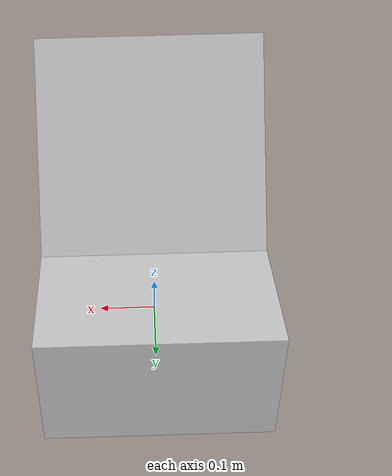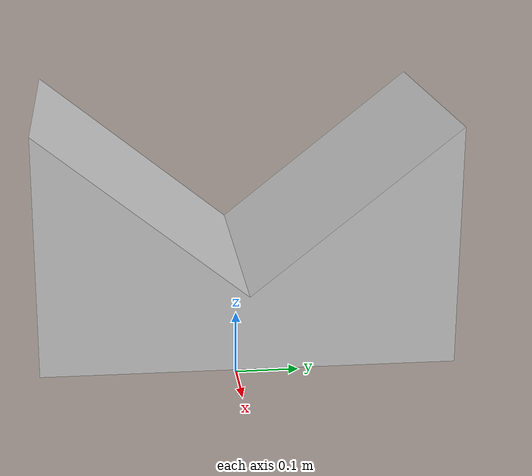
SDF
<?xml version="1.0" ?>
<sdf version="1.5">
  <model name="rampa_dupla">
    <link name="link">
      <collision name="collision">
        <geometry>
          <mesh>
            <scale>0.2 0.2 0.2</scale>
            <uri>model://rampa_dupla/meshes/rampa_dupla.stl</uri>
          </mesh>
        </geometry>
      </collision>
      <visual name="visual">
        <geometry>
          <mesh>
            <scale>0.2 0.2 0.2</scale>
            <uri>model://rampa_dupla/meshes/rampa_dupla.dae</uri>
          </mesh>
        </geometry>
      </visual>
    </link>
  </model>
</sdf>
